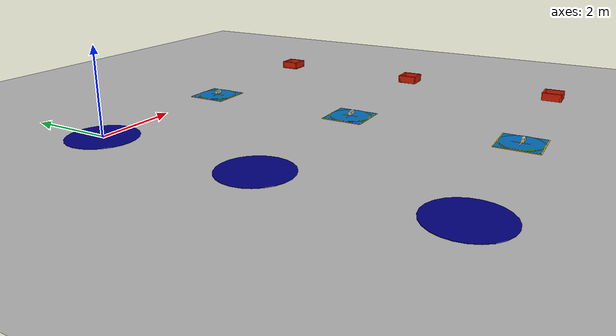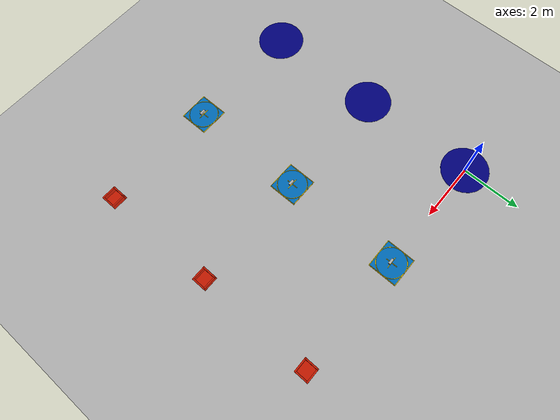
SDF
<?xml version="1.0" ?>
<sdf version="1.10">
  <world name="itajuba_fase3_26">
    <physics type="ode">
      <max_step_size>0.004</max_step_size>
      <real_time_factor>1.0</real_time_factor>
      <real_time_update_rate>250</real_time_update_rate>
    </physics>

    <plugin name="gz::sim::systems::Physics" filename="gz-sim-physics-system"/>
    <plugin name="gz::sim::systems::UserCommands" filename="gz-sim-user-commands-system"/>
    <plugin name="gz::sim::systems::SceneBroadcaster" filename="gz-sim-scene-broadcaster-system"/>
    <plugin name="gz::sim::systems::Contact" filename="gz-sim-contact-system"/>
    <plugin name="gz::sim::systems::Imu" filename="gz-sim-imu-system"/>
    <plugin name="gz::sim::systems::AirPressure" filename="gz-sim-air-pressure-system"/>
    <plugin name="gz::sim::systems::ApplyLinkWrench" filename="gz-sim-apply-link-wrench-system"/>
    <plugin name="gz::sim::systems::NavSat" filename="gz-sim-navsat-system"/>
    <plugin name="gz::sim::systems::Sensors" filename="gz-sim-sensors-system">
      <render_engine>ogre2</render_engine>
    </plugin>

    <gravity>0 0 -9.8</gravity>
    <magnetic_field>6e-06 2.3e-05 -4.2e-05</magnetic_field>
    <atmosphere type="adiabatic"/>

    <spherical_coordinates>
      <surface_model>EARTH_WGS84</surface_model>
      <world_frame_orientation>ENU</world_frame_orientation>
      <latitude_deg>-23.203008</latitude_deg>
      <longitude_deg>-45.874897</longitude_deg>
      <elevation>0</elevation>
    </spherical_coordinates>

    <scene>
      <ambient>0.4 0.4 0.4 1</ambient>
      <background>0.7 0.7 0.7 1</background>
      <shadows>true</shadows>
      <sky>
        <clouds />
      </sky>
    </scene>

    <light type="directional" name="sun">
      <cast_shadows>true</cast_shadows>
      <pose>0 0 20 0 0 0</pose>
      <ambient>0.8 0.8 0.8 1</ambient>
      <diffuse>1.0 1.0 1.0 1</diffuse>
      <specular>0.2 0.2 0.2 1</specular>
      <attenuation>
        <range>1000</range>
        <constant>0.9</constant>
        <linear>0.01</linear>
        <quadratic>0.001</quadratic>
      </attenuation>
      <direction>-0.5 0.1 -0.9</direction>
    </light>

    <!-- ground plane -->
    <model name="ground_plane">
      <static>true</static>
      <link name="link">
        <collision name="collision">
          <pose>0 0 0 0 0 0</pose>
          <geometry>
            <plane>
              <normal>0 0 1</normal>
              <size>250 250</size>
            </plane>
          </geometry>
          <surface>
            <friction>
              <ode>
                <mu>1</mu>
                <mu2>1</mu2>
              </ode>
            </friction>
          </surface>
        </collision>
        <visual name="grass">
          <pose>0 0 0 0 0 0</pose>
          <cast_shadows>false</cast_shadows>
          <geometry>
            <mesh>
              <uri>file://grass_plane/meshes/grass_plane.dae</uri>
            </mesh>
          </geometry>
        </visual>
      </link>
    </model>

    <!-- Decolagem Base 1 (blue circle at origin) -->
    <model name="takeoff_base_1">
      <include>
        <uri>model://takeoff_base</uri>
        <pose>0.0 0.0 0 0 0 0</pose>
      </include>
    </model>

    <!-- Decolagem Base 2 (blue circle) -->
    <model name="takeoff_base_2">
      <include>
        <uri>model://takeoff_base</uri>
        <pose>0.0 -4.0 0 0 0 0</pose>
      </include>
    </model>

    <!-- Decolagem Base 3 (blue circle) -->
    <model name="takeoff_base_3">
      <include>
        <uri>model://takeoff_base</uri>
        <pose>0.0 -8.0 0 0 0 0</pose>
      </include>
    </model>

    <!-- Pacote Base 1 (yellow square with blue border and center cross) -->
    <model name="package_base_1">
      <include>
        <uri>model://package_base</uri>
        <pose>4.0 0.0 0 0 0 0</pose>
      </include>
    </model>

    <!-- Pacote Base 2 (yellow square with blue border and center cross) -->
    <model name="package_base_2">
      <include>
        <uri>model://package_base</uri>
        <pose>4.0 -4.0 0 0 0 0</pose>
      </include>
    </model>

    <!-- Pacote Base 3 (yellow square with blue border and center cross) -->
    <model name="package_base_3">
      <include>
        <uri>model://package_base</uri>
        <pose>4.0 -8.0 0 0 0 0</pose>
      </include>
    </model>

    <!-- First Aid Kit 1 -->
    <model name="first_aid_kit_1">
      <include>
        <uri>model://first_aid_kit</uri>
        <pose>4.0 0.0 0.1 0 0 0</pose>
      </include>
    </model>

    <!-- First Aid Kit 2 -->
    <model name="first_aid_kit_2">
      <include>
        <uri>model://first_aid_kit</uri>
        <pose>4.0 -4.0 0.1 0 0 0</pose>
      </include>
    </model>

    <!-- First Aid Kit 3 -->
    <model name="first_aid_kit_3">
      <include>
        <uri>model://first_aid_kit</uri>
        <pose>4.0 -8.0 0.1 0 0 0</pose>
      </include>
    </model>

    <!-- Destination Box 1 -->
    <model name="destination_box_1">
      <include>
        <uri>model://destination_box_open</uri>
        <pose>8.0 0 0 0 0 0</pose>
      </include>
    </model>

    <!-- Destination Box 2 -->
    <model name="destination_box_2">
      <include>
        <uri>model://destination_box_open</uri>
        <pose>8.0 -4.0 0 0 0 0</pose>
      </include>
    </model>

    <!-- Destination Box 3 -->
    <model name="destination_box_3">
      <include>
        <uri>model://destination_box_open</uri>
        <pose>8.0 -8.0 0 0 0 0</pose>
      </include>
    </model>

  </world>
</sdf>

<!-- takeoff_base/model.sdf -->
<sdf version='1.10'>
  <model name="takeoff_base">
    <static>true</static>
    <link name="link">
      <visual name="visual">
        <geometry>
          <cylinder>
            <radius>0.8</radius>
            <length>0.02</length>
          </cylinder>
        </geometry>
        <material>
          <ambient>0.0 0.0 0.4 1</ambient>
          <diffuse>0.0 0.0 0.5 1</diffuse>
          <specular>0.1 0.1 0.1 1</specular>
        </material>
      </visual>
      <collision name="collision">
        <geometry>
          <cylinder>
            <radius>0.8</radius>
            <length>0.02</length>
          </cylinder>
        </geometry>
      </collision>
    </link>
  </model>
</sdf>

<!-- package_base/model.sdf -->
<sdf version='1.10'>
  <model name="package_base">
    <static>true</static>
    <link name="link">
      <visual name="yellow_base">
        <geometry>
          <box>
            <size>1.0 1.0 0.02</size>
          </box>
        </geometry>
        <material>
          <ambient>1.0 0.85 0.0 1</ambient>
          <diffuse>1.0 0.85 0.0 1</diffuse>
          <specular>0.1 0.1 0.1 1</specular>
        </material>
      </visual>

      <visual name="blue_border">
        <pose>0 0 0.012 0 0 0</pose>
        <geometry>
          <box>
            <size>0.96 0.96 0.005</size>
          </box>
        </geometry>
        <material>
          <ambient>0.0 0.439 0.753 1</ambient>
          <diffuse>0.0 0.439 0.753 1</diffuse>
          <specular>0.1 0.1 0.1 1</specular>
        </material>
      </visual>

      <visual name="yellow_circle">
        <pose>0 0 0.015 0 0 0</pose>
        <geometry>
          <cylinder>
            <radius>0.5</radius>
            <length>0.006</length>
          </cylinder>
        </geometry>
        <material>
          <ambient>1.0 0.85 0.0 1</ambient>
          <diffuse>1.0 0.85 0.0 1</diffuse>
          <specular>0.1 0.1 0.1 1</specular>
        </material>
      </visual>

      <visual name="blue_circle">
        <pose>0 0 0.018 0 0 0</pose>
        <geometry>
          <cylinder>
            <radius>0.48</radius>
            <length>0.006</length>
          </cylinder>
        </geometry>
        <material>
          <ambient>0.0 0.439 0.753 1</ambient>
          <diffuse>0.0 0.439 0.753 1</diffuse>
          <specular>0.1 0.1 0.1 1</specular>
        </material>
      </visual>

      <visual name="cross_horizontal">
        <pose>0 0 0.022 0 0 0</pose>
        <geometry>
          <box>
            <size>0.4 0.02 0.005</size>
          </box>
        </geometry>
        <material>
          <ambient>1.0 0.85 0.0 1</ambient>
          <diffuse>1.0 0.85 0.0 1</diffuse>
          <specular>0.1 0.1 0.1 1</specular>
        </material>
      </visual>

      <visual name="cross_vertical">
        <pose>0 0 0.022 0 0 0</pose>
        <geometry>
          <box>
            <size>0.02 0.4 0.005</size>
          </box>
        </geometry>
        <material>
          <ambient>1.0 0.85 0.0 1</ambient>
          <diffuse>1.0 0.85 0.0 1</diffuse>
          <specular>0.1 0.1 0.1 1</specular>
        </material>
      </visual>

      <collision name="collision">
        <geometry>
          <box>
            <size>1.0 1.0 0.02</size>
          </box>
        </geometry>
      </collision>
    </link>
  </model>
</sdf>

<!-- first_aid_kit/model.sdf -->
<sdf version='1.6'>
  <model name='first_aid_kit'>
  <static> false </static>
    <link name='first_aid_kit'>
      <pose>0 0 0 0 0 3.14159</pose>
      <visual name='visual'>
        <geometry>
          <mesh>
            <uri>model://first_aid_kit/meshes/first_aid_kit.obj</uri>
            <scale>1 1 1</scale>
          </mesh>
        </geometry>
      </visual>
      <inertial>
        <pose>0 0 0 0 0 0</pose>
        <mass>1.0</mass>
        <inertia>
          <ixx>0.000942</ixx>
          <iyy>0.003702</iyy>
          <izz>0.003577</izz>
          <ixy>0.0</ixy>
          <ixz>0.0</ixz>
          <iyz>0.0</iyz>
        </inertia>
      </inertial>
      <collision name='collision'>
        <pose>0 0 0 0 0 0</pose>
        <geometry>
          <box>
            <size>0.195 0.07 0.08</size>
          </box>
        </geometry>
        <surface>
          <friction>
            <ode>
              <mu>0.6</mu>
              <mu2>0.6</mu2>
            </ode>
          </friction>
          <bounce>
            <restitution_coefficient>0.05</restitution_coefficient>
            <threshold>1.0</threshold>
          </bounce>
          <contact>
            <ode>
              <soft_cfm>0.0</soft_cfm>
              <soft_erp>0.2</soft_erp>
            </ode>
          </contact>
        </surface>
      </collision>
    </link>
  </model>
</sdf>

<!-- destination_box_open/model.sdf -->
<sdf version='1.10'>
  <model name='destination_box_open'>
    <static>true</static>
    <link name='box_link'>
      <!-- Bottom of the box -->
      <visual name='bottom'>
        <pose>0 0 0 0 0 0</pose>
        <geometry>
          <box>
            <size>0.5 0.5 0.05</size>
          </box>
        </geometry>
        <material>
          <ambient>0.6 0.1 0.0 1</ambient>
          <diffuse>0.8 0.1 0.0 1</diffuse>
          <specular>0.2 0.2 0.2 1</specular>
        </material>
      </visual>
      <collision name='bottom_collision'>
        <pose>0 0 0 0 0 0</pose>
        <geometry>
          <box>
            <size>0.5 0.5 0.05</size>
          </box>
        </geometry>
      </collision>

      <!-- Front side -->
      <visual name='front'>
        <pose>0 -0.225 0.1 0 0 0</pose>
        <geometry>
          <box>
            <size>0.5 0.05 0.2</size>
          </box>
        </geometry>
        <material>
          <ambient>0.6 0.1 0.0 1</ambient>
          <diffuse>0.8 0.1 0.0 1</diffuse>
          <specular>0.2 0.2 0.2 1</specular>
        </material>
      </visual>
      <collision name='front_collision'>
        <pose>0 -0.225 0.1 0 0 0</pose>
        <geometry>
          <box>
            <size>0.5 0.05 0.2</size>
          </box>
        </geometry>
      </collision>

      <!-- Back side -->
      <visual name='back'>
        <pose>0 0.225 0.1 0 0 0</pose>
        <geometry>
          <box>
            <size>0.5 0.05 0.2</size>
          </box>
        </geometry>
        <material>
          <ambient>0.6 0.1 0.0 1</ambient>
          <diffuse>0.8 0.1 0.0 1</diffuse>
          <specular>0.2 0.2 0.2 1</specular>
        </material>
      </visual>
      <collision name='back_collision'>
        <pose>0 0.225 0.1 0 0 0</pose>
        <geometry>
          <box>
            <size>0.5 0.05 0.2</size>
          </box>
        </geometry>
      </collision>

      <!-- Left side -->
      <visual name='left'>
        <pose>-0.225 0 0.1 0 0 0</pose>
        <geometry>
          <box>
            <size>0.05 0.5 0.2</size>
          </box>
        </geometry>
        <material>
          <ambient>0.6 0.1 0.0 1</ambient>
          <diffuse>0.8 0.1 0.0 1</diffuse>
          <specular>0.2 0.2 0.2 1</specular>
        </material>
      </visual>
      <collision name='left_collision'>
        <pose>-0.225 0 0.1 0 0 0</pose>
        <geometry>
          <box>
            <size>0.05 0.5 0.2</size>
          </box>
        </geometry>
      </collision>

      <!-- Right side -->
      <visual name='right'>
        <pose>0.225 0 0.1 0 0 0</pose>
        <geometry>
          <box>
            <size>0.05 0.5 0.2</size>
          </box>
        </geometry>
        <material>
          <ambient>0.6 0.1 0.0 1</ambient>
          <diffuse>0.8 0.1 0.0 1</diffuse>
          <specular>0.2 0.2 0.2 1</specular>
        </material>
      </visual>
      <collision name='right_collision'>
        <pose>0.225 0 0.1 0 0 0</pose>
        <geometry>
          <box>
            <size>0.05 0.5 0.2</size>
          </box>
        </geometry>
      </collision>
    </link>
  </model>
</sdf>
